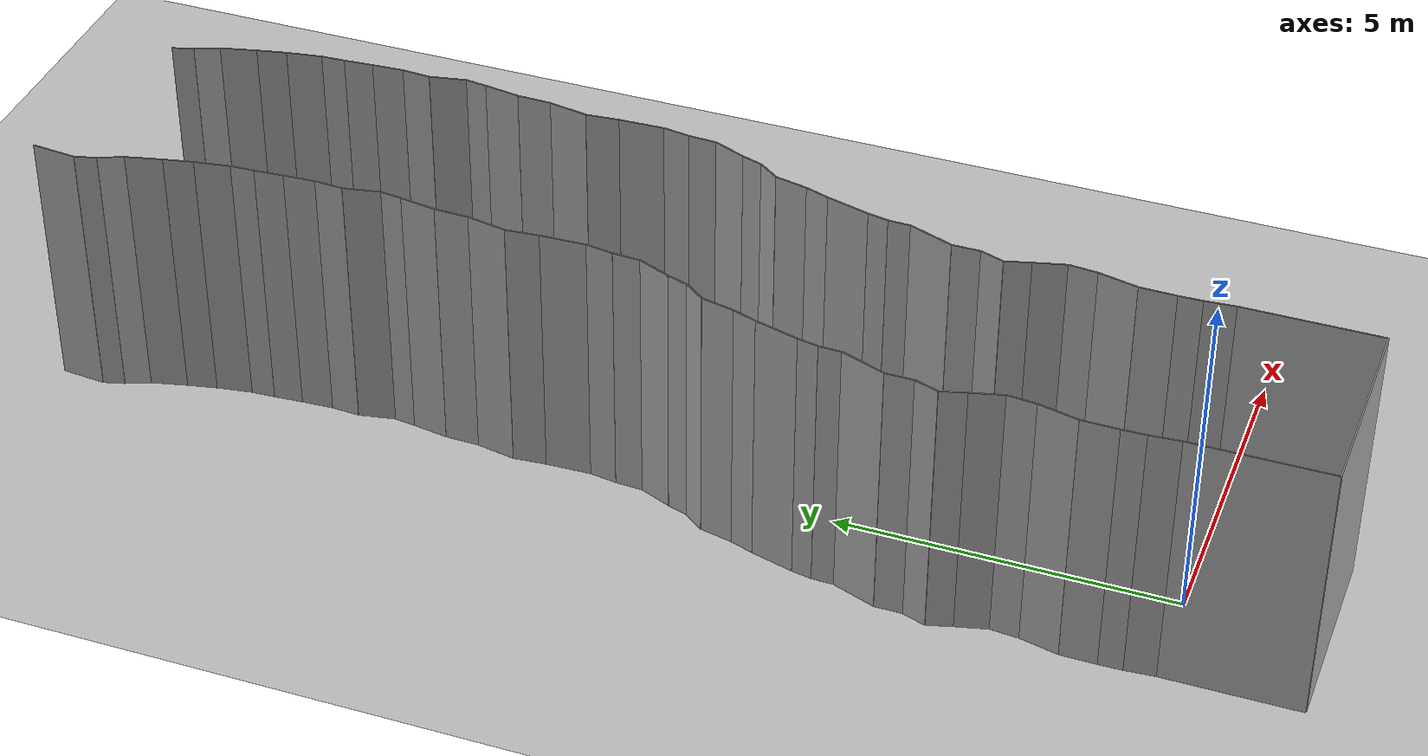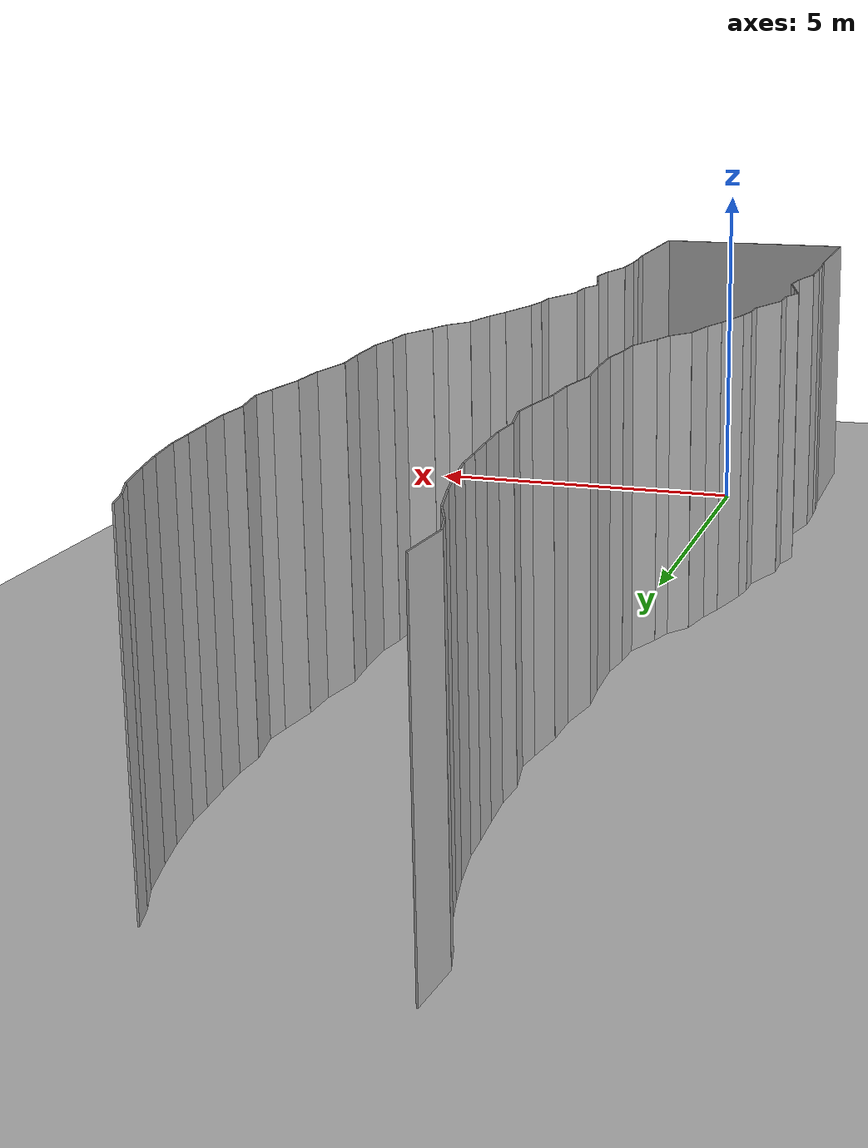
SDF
<sdf version="1.6">
 <world name="default">
  <model name="ground_plane">
   <static>1</static>
   <link name="link">
    <collision name="collision">
     <geometry><plane><normal>0 0 1</normal><size>200 200</size></plane></geometry>
     <surface><friction><ode><mu>100</mu><mu2>50</mu2></ode></friction></surface>
    </collision>
    <visual name="visual">
     <cast_shadows>0</cast_shadows>
     <geometry><plane><normal>0 0 1</normal><size>200 200</size></plane></geometry>
     <material>
      <script><uri>file://media/materials/scripts/gazebo.material</uri><name>Gazebo/Grey</name></script>
     </material>
    </visual>
   </link>
   <pose>0 100 0 0 -0 0</pose>
  </model>
  <model name="wall_back">
   <static>1</static>
   <pose>0.0 -2 2 0.0 0 0.0</pose>
   <link name="link">
    <collision name="collision"><geometry><box><size>3 0.02 4</size></box></geometry></collision>
    <visual name="visual">
     <material>
      <script><name>Gazebo/Grey</name><uri>file://media/materials/scripts/gazebo.material</uri></script>
     </material>
     <geometry><box><size>3 0.02 4</size></box></geometry>
    </visual>
   </link>
  </model>
  <model name="wall_left">
   <static>1</static>
   <pose>1.5 -1 2 0 0 0.00</pose>
   <link name="link">
    <collision name="collision"><geometry><box><size>0.02 2 4</size></box></geometry></collision>
    <visual name="visual">
     <material>
      <script><name>Gazebo/Grey</name><uri>file://media/materials/scripts/gazebo.material</uri></script>
     </material>
     <geometry><box><size>0.02 2 4</size></box></geometry>
    </visual>
   </link>
  </model>
  <model name="wall_right">
   <static>1</static>
   <pose>-1.5 -1 2 0 0 0.00</pose>
   <link name="link">
    <collision name="collision"><geometry><box><size>0.02 2 4</size></box></geometry></collision>
    <visual name="visual">
     <material>
      <script><name>Gazebo/Grey</name><uri>file://media/materials/scripts/gazebo.material</uri></script>
     </material>
     <geometry><box><size>0.02 2 4</size></box></geometry>
    </visual>
   </link>
  </model>
  <model name="wall_0">
   <static>1</static>
   <pose>-1.517400405700846 0.22270519185213933 2 0 0 0.07797360765698158</pose>
   <link name="link">
    <collision name="collision"><geometry><box><size>0.02 0.446767843948 4</size></box></geometry></collision>
    <visual name="visual">
     <material>
      <script><name>Gazebo/Grey</name><uri>file://media/materials/scripts/gazebo.material</uri></script>
     </material>
     <geometry><box><size>0.02 0.446767843948 4</size></box></geometry>
    </visual>
   </link>
  </model>
  <model name="wall_1">
   <static>1</static>
   <pose>1.482599594299154 0.22270519185213933 2 0 0 0.07797360765698158</pose>
   <link name="link">
    <collision name="collision"><geometry><box><size>0.02 0.446767843948 4</size></box></geometry></collision>
    <visual name="visual">
     <material>
      <script><name>Gazebo/Grey</name><uri>file://media/materials/scripts/gazebo.material</uri></script>
     </material>
     <geometry><box><size>0.02 0.446767843948 4</size></box></geometry>
    </visual>
   </link>
  </model>
  <model name="wall_2">
   <static>1</static>
   <pose>-1.538484740069656 0.6191674311720261 2 0 0 0.021198431287549818</pose>
   <link name="link">
    <collision name="collision"><geometry><box><size>0.02 0.347592191369 4</size></box></geometry></collision>
    <visual name="visual">
     <material>
      <script><name>Gazebo/Grey</name><uri>file://media/materials/scripts/gazebo.material</uri></script>
     </material>
     <geometry><box><size>0.02 0.347592191369 4</size></box></geometry>
    </visual>
   </link>
  </model>
  <model name="wall_3">
   <static>1</static>
   <pose>1.461515259930344 0.6191674311720261 2 0 0 0.021198431287549818</pose>
   <link name="link">
    <collision name="collision"><geometry><box><size>0.02 0.347592191369 4</size></box></geometry></collision>
    <visual name="visual">
     <material>
      <script><name>Gazebo/Grey</name><uri>file://media/materials/scripts/gazebo.material</uri></script>
     </material>
     <geometry><box><size>0.02 0.347592191369 4</size></box></geometry>
    </visual>
   </link>
  </model>
  <model name="wall_4">
   <static>1</static>
   <pose>-1.5382475325272809 1.0614027822165968 2 0 0 -0.014604001111507356</pose>
   <link name="link">
    <collision name="collision"><geometry><box><size>0.02 0.537013872449 4</size></box></geometry></collision>
    <visual name="visual">
     <material>
      <script><name>Gazebo/Grey</name><uri>file://media/materials/scripts/gazebo.material</uri></script>
     </material>
     <geometry><box><size>0.02 0.537013872449 4</size></box></geometry>
    </visual>
   </link>
  </model>
  <model name="wall_5">
   <static>1</static>
   <pose>1.4617524674727191 1.0614027822165968 2 0 0 -0.014604001111507356</pose>
   <link name="link">
    <collision name="collision"><geometry><box><size>0.02 0.537013872449 4</size></box></geometry></collision>
    <visual name="visual">
     <material>
      <script><name>Gazebo/Grey</name><uri>file://media/materials/scripts/gazebo.material</uri></script>
     </material>
     <geometry><box><size>0.02 0.537013872449 4</size></box></geometry>
    </visual>
   </link>
  </model>
  <model name="wall_6">
   <static>1</static>
   <pose>-1.4690011064224104 1.6202511780744204 2 0 0 -0.22128828142202453</pose>
   <link name="link">
    <collision name="collision"><geometry><box><size>0.02 0.595255185584 4</size></box></geometry></collision>
    <visual name="visual">
     <material>
      <script><name>Gazebo/Grey</name><uri>file://media/materials/scripts/gazebo.material</uri></script>
     </material>
     <geometry><box><size>0.02 0.595255185584 4</size></box></geometry>
    </visual>
   </link>
  </model>
  <model name="wall_7">
   <static>1</static>
   <pose>1.5309988935775896 1.6202511780744204 2 0 0 -0.22128828142202453</pose>
   <link name="link">
    <collision name="collision"><geometry><box><size>0.02 0.595255185584 4</size></box></geometry></collision>
    <visual name="visual">
     <material>
      <script><name>Gazebo/Grey</name><uri>file://media/materials/scripts/gazebo.material</uri></script>
     </material>
     <geometry><box><size>0.02 0.595255185584 4</size></box></geometry>
    </visual>
   </link>
  </model>
  <model name="wall_8">
   <static>1</static>
   <pose>-1.3854139207875884 2.1224906012741633 2 0 0 -0.0859816332729206</pose>
   <link name="link">
    <collision name="collision"><geometry><box><size>0.02 0.425309817521 4</size></box></geometry></collision>
    <visual name="visual">
     <material>
      <script><name>Gazebo/Grey</name><uri>file://media/materials/scripts/gazebo.material</uri></script>
     </material>
     <geometry><box><size>0.02 0.425309817521 4</size></box></geometry>
    </visual>
   </link>
  </model>
  <model name="wall_9">
   <static>1</static>
   <pose>1.6145860792124116 2.1224906012741633 2 0 0 -0.0859816332729206</pose>
   <link name="link">
    <collision name="collision"><geometry><box><size>0.02 0.425309817521 4</size></box></geometry></collision>
    <visual name="visual">
     <material>
      <script><name>Gazebo/Grey</name><uri>file://media/materials/scripts/gazebo.material</uri></script>
     </material>
     <geometry><box><size>0.02 0.425309817521 4</size></box></geometry>
    </visual>
   </link>
  </model>
  <model name="wall_10">
   <static>1</static>
   <pose>-1.4278485293488319 2.5689880970863985 2 0 0 0.25314279067731127</pose>
   <link name="link">
    <collision name="collision"><geometry><box><size>0.02 0.484703791591 4</size></box></geometry></collision>
    <visual name="visual">
     <material>
      <script><name>Gazebo/Grey</name><uri>file://media/materials/scripts/gazebo.material</uri></script>
     </material>
     <geometry><box><size>0.02 0.484703791591 4</size></box></geometry>
    </visual>
   </link>
  </model>
  <model name="wall_11">
   <static>1</static>
   <pose>1.5721514706511681 2.5689880970863985 2 0 0 0.25314279067731127</pose>
   <link name="link">
    <collision name="collision"><geometry><box><size>0.02 0.484703791591 4</size></box></geometry></collision>
    <visual name="visual">
     <material>
      <script><name>Gazebo/Grey</name><uri>file://media/materials/scripts/gazebo.material</uri></script>
     </material>
     <geometry><box><size>0.02 0.484703791591 4</size></box></geometry>
    </visual>
   </link>
  </model>
  <model name="wall_12">
   <static>1</static>
   <pose>-1.5404899620019925 2.9866335350339854 2 0 0 0.2765523475475418</pose>
   <link name="link">
    <collision name="collision"><geometry><box><size>0.02 0.380492301197 4</size></box></geometry></collision>
    <visual name="visual">
     <material>
      <script><name>Gazebo/Grey</name><uri>file://media/materials/scripts/gazebo.material</uri></script>
     </material>
     <geometry><box><size>0.02 0.380492301197 4</size></box></geometry>
    </visual>
   </link>
  </model>
  <model name="wall_13">
   <static>1</static>
   <pose>1.4595100379980075 2.9866335350339854 2 0 0 0.2765523475475418</pose>
   <link name="link">
    <collision name="collision"><geometry><box><size>0.02 0.380492301197 4</size></box></geometry></collision>
    <visual name="visual">
     <material>
      <script><name>Gazebo/Grey</name><uri>file://media/materials/scripts/gazebo.material</uri></script>
     </material>
     <geometry><box><size>0.02 0.380492301197 4</size></box></geometry>
    </visual>
   </link>
  </model>
  <model name="wall_14">
   <static>1</static>
   <pose>-1.5325124790575746 3.343703439421072 2 0 0 -0.3315677890882658</pose>
   <link name="link">
    <collision name="collision"><geometry><box><size>0.02 0.368157650196 4</size></box></geometry></collision>
    <visual name="visual">
     <material>
      <script><name>Gazebo/Grey</name><uri>file://media/materials/scripts/gazebo.material</uri></script>
     </material>
     <geometry><box><size>0.02 0.368157650196 4</size></box></geometry>
    </visual>
   </link>
  </model>
  <model name="wall_15">
   <static>1</static>
   <pose>1.4674875209424254 3.343703439421072 2 0 0 -0.3315677890882658</pose>
   <link name="link">
    <collision name="collision"><geometry><box><size>0.02 0.368157650196 4</size></box></geometry></collision>
    <visual name="visual">
     <material>
      <script><name>Gazebo/Grey</name><uri>file://media/materials/scripts/gazebo.material</uri></script>
     </material>
     <geometry><box><size>0.02 0.368157650196 4</size></box></geometry>
    </visual>
   </link>
  </model>
  <model name="wall_16">
   <static>1</static>
   <pose>-1.4721097631918243 3.724370834767425 2 0 0 -0.002324633996140721</pose>
   <link name="link">
    <collision name="collision"><geometry><box><size>0.02 0.41323064456 4</size></box></geometry></collision>
    <visual name="visual">
     <material>
      <script><name>Gazebo/Grey</name><uri>file://media/materials/scripts/gazebo.material</uri></script>
     </material>
     <geometry><box><size>0.02 0.41323064456 4</size></box></geometry>
    </visual>
   </link>
  </model>
  <model name="wall_17">
   <static>1</static>
   <pose>1.5278902368081757 3.724370834767425 2 0 0 -0.002324633996140721</pose>
   <link name="link">
    <collision name="collision"><geometry><box><size>0.02 0.41323064456 4</size></box></geometry></collision>
    <visual name="visual">
     <material>
      <script><name>Gazebo/Grey</name><uri>file://media/materials/scripts/gazebo.material</uri></script>
     </material>
     <geometry><box><size>0.02 0.41323064456 4</size></box></geometry>
    </visual>
   </link>
  </model>
  <model name="wall_18">
   <static>1</static>
   <pose>-1.3517692520525595 4.256364432140748 2 0 0 -0.35294653380588364</pose>
   <link name="link">
    <collision name="collision"><geometry><box><size>0.02 0.693506609392 4</size></box></geometry></collision>
    <visual name="visual">
     <material>
      <script><name>Gazebo/Grey</name><uri>file://media/materials/scripts/gazebo.material</uri></script>
     </material>
     <geometry><box><size>0.02 0.693506609392 4</size></box></geometry>
    </visual>
   </link>
  </model>
  <model name="wall_19">
   <static>1</static>
   <pose>1.6482307479474405 4.256364432140748 2 0 0 -0.35294653380588364</pose>
   <link name="link">
    <collision name="collision"><geometry><box><size>0.02 0.693506609392 4</size></box></geometry></collision>
    <visual name="visual">
     <material>
      <script><name>Gazebo/Grey</name><uri>file://media/materials/scripts/gazebo.material</uri></script>
     </material>
     <geometry><box><size>0.02 0.693506609392 4</size></box></geometry>
    </visual>
   </link>
  </model>
  <model name="wall_20">
   <static>1</static>
   <pose>-1.227636711686697 4.744123964637654 2 0 0 -0.026304532438163615</pose>
   <link name="link">
    <collision name="collision"><geometry><box><size>0.02 0.324873786497 4</size></box></geometry></collision>
    <visual name="visual">
     <material>
      <script><name>Gazebo/Grey</name><uri>file://media/materials/scripts/gazebo.material</uri></script>
     </material>
     <geometry><box><size>0.02 0.324873786497 4</size></box></geometry>
    </visual>
   </link>
  </model>
  <model name="wall_21">
   <static>1</static>
   <pose>1.772363288313303 4.744123964637654 2 0 0 -0.026304532438163615</pose>
   <link name="link">
    <collision name="collision"><geometry><box><size>0.02 0.324873786497 4</size></box></geometry></collision>
    <visual name="visual">
     <material>
      <script><name>Gazebo/Grey</name><uri>file://media/materials/scripts/gazebo.material</uri></script>
     </material>
     <geometry><box><size>0.02 0.324873786497 4</size></box></geometry>
    </visual>
   </link>
  </model>
  <model name="wall_22">
   <static>1</static>
   <pose>-1.194815430475022 5.056967520714394 2 0 0 -0.1875117950377441</pose>
   <link name="link">
    <collision name="collision"><geometry><box><size>0.02 0.306294718969 4</size></box></geometry></collision>
    <visual name="visual">
     <material>
      <script><name>Gazebo/Grey</name><uri>file://media/materials/scripts/gazebo.material</uri></script>
     </material>
     <geometry><box><size>0.02 0.306294718969 4</size></box></geometry>
    </visual>
   </link>
  </model>
  <model name="wall_23">
   <static>1</static>
   <pose>1.805184569524978 5.056967520714394 2 0 0 -0.1875117950377441</pose>
   <link name="link">
    <collision name="collision"><geometry><box><size>0.02 0.306294718969 4</size></box></geometry></collision>
    <visual name="visual">
     <material>
      <script><name>Gazebo/Grey</name><uri>file://media/materials/scripts/gazebo.material</uri></script>
     </material>
     <geometry><box><size>0.02 0.306294718969 4</size></box></geometry>
    </visual>
   </link>
  </model>
  <model name="wall_24">
   <static>1</static>
   <pose>-1.079417371918186 5.526751582192476 2 0 0 -0.26555675770987125</pose>
   <link name="link">
    <collision name="collision"><geometry><box><size>0.02 0.6618422766 4</size></box></geometry></collision>
    <visual name="visual">
     <material>
      <script><name>Gazebo/Grey</name><uri>file://media/materials/scripts/gazebo.material</uri></script>
     </material>
     <geometry><box><size>0.02 0.6618422766 4</size></box></geometry>
    </visual>
   </link>
  </model>
  <model name="wall_25">
   <static>1</static>
   <pose>1.920582628081814 5.526751582192476 2 0 0 -0.26555675770987125</pose>
   <link name="link">
    <collision name="collision"><geometry><box><size>0.02 0.6618422766 4</size></box></geometry></collision>
    <visual name="visual">
     <material>
      <script><name>Gazebo/Grey</name><uri>file://media/materials/scripts/gazebo.material</uri></script>
     </material>
     <geometry><box><size>0.02 0.6618422766 4</size></box></geometry>
    </visual>
   </link>
  </model>
  <model name="wall_26">
   <static>1</static>
   <pose>-0.9331630423043914 6.019489471910388 2 0 0 -0.33002937253807935</pose>
   <link name="link">
    <collision name="collision"><geometry><box><size>0.02 0.366618748459 4</size></box></geometry></collision>
    <visual name="visual">
     <material>
      <script><name>Gazebo/Grey</name><uri>file://media/materials/scripts/gazebo.material</uri></script>
     </material>
     <geometry><box><size>0.02 0.366618748459 4</size></box></geometry>
    </visual>
   </link>
  </model>
  <model name="wall_27">
   <static>1</static>
   <pose>2.0668369576956085 6.019489471910388 2 0 0 -0.33002937253807935</pose>
   <link name="link">
    <collision name="collision"><geometry><box><size>0.02 0.366618748459 4</size></box></geometry></collision>
    <visual name="visual">
     <material>
      <script><name>Gazebo/Grey</name><uri>file://media/materials/scripts/gazebo.material</uri></script>
     </material>
     <geometry><box><size>0.02 0.366618748459 4</size></box></geometry>
    </visual>
   </link>
  </model>
  <model name="wall_28">
   <static>1</static>
   <pose>-0.8216548867542122 6.434227950047219 2 0 0 -0.21264242066373062</pose>
   <link name="link">
    <collision name="collision"><geometry><box><size>0.02 0.493764817735 4</size></box></geometry></collision>
    <visual name="visual">
     <material>
      <script><name>Gazebo/Grey</name><uri>file://media/materials/scripts/gazebo.material</uri></script>
     </material>
     <geometry><box><size>0.02 0.493764817735 4</size></box></geometry>
    </visual>
   </link>
  </model>
  <model name="wall_29">
   <static>1</static>
   <pose>2.178345113245788 6.434227950047219 2 0 0 -0.21264242066373062</pose>
   <link name="link">
    <collision name="collision"><geometry><box><size>0.02 0.493764817735 4</size></box></geometry></collision>
    <visual name="visual">
     <material>
      <script><name>Gazebo/Grey</name><uri>file://media/materials/scripts/gazebo.material</uri></script>
     </material>
     <geometry><box><size>0.02 0.493764817735 4</size></box></geometry>
    </visual>
   </link>
  </model>
  <model name="wall_30">
   <static>1</static>
   <pose>-0.6594195212636004 6.822402548026057 2 0 0 -0.6434698371133363</pose>
   <link name="link">
    <collision name="collision"><geometry><box><size>0.02 0.367123402309 4</size></box></geometry></collision>
    <visual name="visual">
     <material>
      <script><name>Gazebo/Grey</name><uri>file://media/materials/scripts/gazebo.material</uri></script>
     </material>
     <geometry><box><size>0.02 0.367123402309 4</size></box></geometry>
    </visual>
   </link>
  </model>
  <model name="wall_31">
   <static>1</static>
   <pose>2.3405804787363995 6.822402548026057 2 0 0 -0.6434698371133363</pose>
   <link name="link">
    <collision name="collision"><geometry><box><size>0.02 0.367123402309 4</size></box></geometry></collision>
    <visual name="visual">
     <material>
      <script><name>Gazebo/Grey</name><uri>file://media/materials/scripts/gazebo.material</uri></script>
     </material>
     <geometry><box><size>0.02 0.367123402309 4</size></box></geometry>
    </visual>
   </link>
  </model>
  <model name="wall_32">
   <static>1</static>
   <pose>-0.5002769118110462 7.120379788905422 2 0 0 -0.3136017950999182</pose>
   <link name="link">
    <collision name="collision"><geometry><box><size>0.02 0.317745766039 4</size></box></geometry></collision>
    <visual name="visual">
     <material>
      <script><name>Gazebo/Grey</name><uri>file://media/materials/scripts/gazebo.material</uri></script>
     </material>
     <geometry><box><size>0.02 0.317745766039 4</size></box></geometry>
    </visual>
   </link>
  </model>
  <model name="wall_33">
   <static>1</static>
   <pose>2.499723088188954 7.120379788905422 2 0 0 -0.3136017950999182</pose>
   <link name="link">
    <collision name="collision"><geometry><box><size>0.02 0.317745766039 4</size></box></geometry></collision>
    <visual name="visual">
     <material>
      <script><name>Gazebo/Grey</name><uri>file://media/materials/scripts/gazebo.material</uri></script>
     </material>
     <geometry><box><size>0.02 0.317745766039 4</size></box></geometry>
    </visual>
   </link>
  </model>
  <model name="wall_34">
   <static>1</static>
   <pose>-0.3526167482036617 7.508015287731277 2 0 0 -0.39516468108146524</pose>
   <link name="link">
    <collision name="collision"><geometry><box><size>0.02 0.512520446292 4</size></box></geometry></collision>
    <visual name="visual">
     <material>
      <script><name>Gazebo/Grey</name><uri>file://media/materials/scripts/gazebo.material</uri></script>
     </material>
     <geometry><box><size>0.02 0.512520446292 4</size></box></geometry>
    </visual>
   </link>
  </model>
  <model name="wall_35">
   <static>1</static>
   <pose>2.6473832517963385 7.508015287731277 2 0 0 -0.39516468108146524</pose>
   <link name="link">
    <collision name="collision"><geometry><box><size>0.02 0.512520446292 4</size></box></geometry></collision>
    <visual name="visual">
     <material>
      <script><name>Gazebo/Grey</name><uri>file://media/materials/scripts/gazebo.material</uri></script>
     </material>
     <geometry><box><size>0.02 0.512520446292 4</size></box></geometry>
    </visual>
   </link>
  </model>
  <model name="wall_36">
   <static>1</static>
   <pose>-0.24348783561851456 7.948004685225667 2 0 0 -0.05145354108220038</pose>
   <link name="link">
    <collision name="collision"><geometry><box><size>0.02 0.407495966095 4</size></box></geometry></collision>
    <visual name="visual">
     <material>
      <script><name>Gazebo/Grey</name><uri>file://media/materials/scripts/gazebo.material</uri></script>
     </material>
     <geometry><box><size>0.02 0.407495966095 4</size></box></geometry>
    </visual>
   </link>
  </model>
  <model name="wall_37">
   <static>1</static>
   <pose>2.7565121643814856 7.948004685225667 2 0 0 -0.05145354108220038</pose>
   <link name="link">
    <collision name="collision"><geometry><box><size>0.02 0.407495966095 4</size></box></geometry></collision>
    <visual name="visual">
     <material>
      <script><name>Gazebo/Grey</name><uri>file://media/materials/scripts/gazebo.material</uri></script>
     </material>
     <geometry><box><size>0.02 0.407495966095 4</size></box></geometry>
    </visual>
   </link>
  </model>
  <model name="wall_38">
   <static>1</static>
   <pose>-0.20231427958396506 8.353806132833219 2 0 0 -0.15056279947688372</pose>
   <link name="link">
    <collision name="collision"><geometry><box><size>0.02 0.409276445221 4</size></box></geometry></collision>
    <visual name="visual">
     <material>
      <script><name>Gazebo/Grey</name><uri>file://media/materials/scripts/gazebo.material</uri></script>
     </material>
     <geometry><box><size>0.02 0.409276445221 4</size></box></geometry>
    </visual>
   </link>
  </model>
  <model name="wall_39">
   <static>1</static>
   <pose>2.797685720416035 8.353806132833219 2 0 0 -0.15056279947688372</pose>
   <link name="link">
    <collision name="collision"><geometry><box><size>0.02 0.409276445221 4</size></box></geometry></collision>
    <visual name="visual">
     <material>
      <script><name>Gazebo/Grey</name><uri>file://media/materials/scripts/gazebo.material</uri></script>
     </material>
     <geometry><box><size>0.02 0.409276445221 4</size></box></geometry>
    </visual>
   </link>
  </model>
  <model name="wall_40">
   <static>1</static>
   <pose>-0.18269914202459525 8.892090272240686 2 0 0 0.03296654550663393</pose>
   <link name="link">
    <collision name="collision"><geometry><box><size>0.02 0.672287338196 4</size></box></geometry></collision>
    <visual name="visual">
     <material>
      <script><name>Gazebo/Grey</name><uri>file://media/materials/scripts/gazebo.material</uri></script>
     </material>
     <geometry><box><size>0.02 0.672287338196 4</size></box></geometry>
    </visual>
   </link>
  </model>
  <model name="wall_41">
   <static>1</static>
   <pose>2.817300857975405 8.892090272240686 2 0 0 0.03296654550663393</pose>
   <link name="link">
    <collision name="collision"><geometry><box><size>0.02 0.672287338196 4</size></box></geometry></collision>
    <visual name="visual">
     <material>
      <script><name>Gazebo/Grey</name><uri>file://media/materials/scripts/gazebo.material</uri></script>
     </material>
     <geometry><box><size>0.02 0.672287338196 4</size></box></geometry>
    </visual>
   </link>
  </model>
  <model name="wall_42">
   <static>1</static>
   <pose>-0.21465609067422717 9.474038734755839 2 0 0 0.0846691498733114</pose>
   <link name="link">
    <collision name="collision"><geometry><box><size>0.02 0.493743605961 4</size></box></geometry></collision>
    <visual name="visual">
     <material>
      <script><name>Gazebo/Grey</name><uri>file://media/materials/scripts/gazebo.material</uri></script>
     </material>
     <geometry><box><size>0.02 0.493743605961 4</size></box></geometry>
    </visual>
   </link>
  </model>
  <model name="wall_43">
   <static>1</static>
   <pose>2.785343909325773 9.474038734755839 2 0 0 0.0846691498733114</pose>
   <link name="link">
    <collision name="collision"><geometry><box><size>0.02 0.493743605961 4</size></box></geometry></collision>
    <visual name="visual">
     <material>
      <script><name>Gazebo/Grey</name><uri>file://media/materials/scripts/gazebo.material</uri></script>
     </material>
     <geometry><box><size>0.02 0.493743605961 4</size></box></geometry>
    </visual>
   </link>
  </model>
  <model name="wall_44">
   <static>1</static>
   <pose>-0.1829470090662563 10.011152340408753 2 0 0 -0.17870450283797976</pose>
   <link name="link">
    <collision name="collision"><geometry><box><size>0.02 0.591674880066 4</size></box></geometry></collision>
    <visual name="visual">
     <material>
      <script><name>Gazebo/Grey</name><uri>file://media/materials/scripts/gazebo.material</uri></script>
     </material>
     <geometry><box><size>0.02 0.591674880066 4</size></box></geometry>
    </visual>
   </link>
  </model>
  <model name="wall_45">
   <static>1</static>
   <pose>2.817052990933744 10.011152340408753 2 0 0 -0.17870450283797976</pose>
   <link name="link">
    <collision name="collision"><geometry><box><size>0.02 0.591674880066 4</size></box></geometry></collision>
    <visual name="visual">
     <material>
      <script><name>Gazebo/Grey</name><uri>file://media/materials/scripts/gazebo.material</uri></script>
     </material>
     <geometry><box><size>0.02 0.591674880066 4</size></box></geometry>
    </visual>
   </link>
  </model>
  <model name="wall_46">
   <static>1</static>
   <pose>-0.12374734299135838 10.556126179677776 2 0 0 -0.026045654928100116</pose>
   <link name="link">
    <collision name="collision"><geometry><box><size>0.02 0.507867592501 4</size></box></geometry></collision>
    <visual name="visual">
     <material>
      <script><name>Gazebo/Grey</name><uri>file://media/materials/scripts/gazebo.material</uri></script>
     </material>
     <geometry><box><size>0.02 0.507867592501 4</size></box></geometry>
    </visual>
   </link>
  </model>
  <model name="wall_47">
   <static>1</static>
   <pose>2.8762526570086417 10.556126179677776 2 0 0 -0.026045654928100116</pose>
   <link name="link">
    <collision name="collision"><geometry><box><size>0.02 0.507867592501 4</size></box></geometry></collision>
    <visual name="visual">
     <material>
      <script><name>Gazebo/Grey</name><uri>file://media/materials/scripts/gazebo.material</uri></script>
     </material>
     <geometry><box><size>0.02 0.507867592501 4</size></box></geometry>
    </visual>
   </link>
  </model>
  <model name="wall_48">
   <static>1</static>
   <pose>-0.07644699972790331 11.076148313374654 2 0 0 -0.15168506396018802</pose>
   <link name="link">
    <collision name="collision"><geometry><box><size>0.02 0.53853243177 4</size></box></geometry></collision>
    <visual name="visual">
     <material>
      <script><name>Gazebo/Grey</name><uri>file://media/materials/scripts/gazebo.material</uri></script>
     </material>
     <geometry><box><size>0.02 0.53853243177 4</size></box></geometry>
    </visual>
   </link>
  </model>
  <model name="wall_49">
   <static>1</static>
   <pose>2.9235530002720966 11.076148313374654 2 0 0 -0.15168506396018802</pose>
   <link name="link">
    <collision name="collision"><geometry><box><size>0.02 0.53853243177 4</size></box></geometry></collision>
    <visual name="visual">
     <material>
      <script><name>Gazebo/Grey</name><uri>file://media/materials/scripts/gazebo.material</uri></script>
     </material>
     <geometry><box><size>0.02 0.53853243177 4</size></box></geometry>
    </visual>
   </link>
  </model>
  <model name="wall_50">
   <static>1</static>
   <pose>-0.01497469235773137 11.502896802387374 2 0 0 -0.12872663914691143</pose>
   <link name="link">
    <collision name="collision"><geometry><box><size>0.02 0.323827345618 4</size></box></geometry></collision>
    <visual name="visual">
     <material>
      <script><name>Gazebo/Grey</name><uri>file://media/materials/scripts/gazebo.material</uri></script>
     </material>
     <geometry><box><size>0.02 0.323827345618 4</size></box></geometry>
    </visual>
   </link>
  </model>
  <model name="wall_51">
   <static>1</static>
   <pose>2.985025307642269 11.502896802387374 2 0 0 -0.12872663914691143</pose>
   <link name="link">
    <collision name="collision"><geometry><box><size>0.02 0.323827345618 4</size></box></geometry></collision>
    <visual name="visual">
     <material>
      <script><name>Gazebo/Grey</name><uri>file://media/materials/scripts/gazebo.material</uri></script>
     </material>
     <geometry><box><size>0.02 0.323827345618 4</size></box></geometry>
    </visual>
   </link>
  </model>
  <model name="wall_52">
   <static>1</static>
   <pose>-0.04615767591568272 11.933152148315687 2 0 0 0.19036829829793145</pose>
   <link name="link">
    <collision name="collision"><geometry><box><size>0.02 0.549285700864 4</size></box></geometry></collision>
    <visual name="visual">
     <material>
      <script><name>Gazebo/Grey</name><uri>file://media/materials/scripts/gazebo.material</uri></script>
     </material>
     <geometry><box><size>0.02 0.549285700864 4</size></box></geometry>
    </visual>
   </link>
  </model>
  <model name="wall_53">
   <static>1</static>
   <pose>2.9538423240843175 11.933152148315687 2 0 0 0.19036829829793145</pose>
   <link name="link">
    <collision name="collision"><geometry><box><size>0.02 0.549285700864 4</size></box></geometry></collision>
    <visual name="visual">
     <material>
      <script><name>Gazebo/Grey</name><uri>file://media/materials/scripts/gazebo.material</uri></script>
     </material>
     <geometry><box><size>0.02 0.549285700864 4</size></box></geometry>
    </visual>
   </link>
  </model>
  <model name="wall_54">
   <static>1</static>
   <pose>-0.08553015207405498 12.414556490212302 2 0 0 -0.059420878645683</pose>
   <link name="link">
    <collision name="collision"><geometry><box><size>0.02 0.424194703844 4</size></box></geometry></collision>
    <visual name="visual">
     <material>
      <script><name>Gazebo/Grey</name><uri>file://media/materials/scripts/gazebo.material</uri></script>
     </material>
     <geometry><box><size>0.02 0.424194703844 4</size></box></geometry>
    </visual>
   </link>
  </model>
  <model name="wall_55">
   <static>1</static>
   <pose>2.914469847925945 12.414556490212302 2 0 0 -0.059420878645683</pose>
   <link name="link">
    <collision name="collision"><geometry><box><size>0.02 0.424194703844 4</size></box></geometry></collision>
    <visual name="visual">
     <material>
      <script><name>Gazebo/Grey</name><uri>file://media/materials/scripts/gazebo.material</uri></script>
     </material>
     <geometry><box><size>0.02 0.424194703844 4</size></box></geometry>
    </visual>
   </link>
  </model>
  <model name="wall_56">
   <static>1</static>
   <pose>-0.08622264358435099 12.861903929554948 2 0 0 0.05633553169933642</pose>
   <link name="link">
    <collision name="collision"><geometry><box><size>0.02 0.471997626016 4</size></box></geometry></collision>
    <visual name="visual">
     <material>
      <script><name>Gazebo/Grey</name><uri>file://media/materials/scripts/gazebo.material</uri></script>
     </material>
     <geometry><box><size>0.02 0.471997626016 4</size></box></geometry>
    </visual>
   </link>
  </model>
  <model name="wall_57">
   <static>1</static>
   <pose>2.913777356415649 12.861903929554948 2 0 0 0.05633553169933642</pose>
   <link name="link">
    <collision name="collision"><geometry><box><size>0.02 0.471997626016 4</size></box></geometry></collision>
    <visual name="visual">
     <material>
      <script><name>Gazebo/Grey</name><uri>file://media/materials/scripts/gazebo.material</uri></script>
     </material>
     <geometry><box><size>0.02 0.471997626016 4</size></box></geometry>
    </visual>
   </link>
  </model>
  <model name="wall_58">
   <static>1</static>
   <pose>-0.1146179216074153 13.314674111700484 2 0 0 0.06945973517018125</pose>
   <link name="link">
    <collision name="collision"><geometry><box><size>0.02 0.435341291348 4</size></box></geometry></collision>
    <visual name="visual">
     <material>
      <script><name>Gazebo/Grey</name><uri>file://media/materials/scripts/gazebo.material</uri></script>
     </material>
     <geometry><box><size>0.02 0.435341291348 4</size></box></geometry>
    </visual>
   </link>
  </model>
  <model name="wall_59">
   <static>1</static>
   <pose>2.8853820783925848 13.314674111700484 2 0 0 0.06945973517018125</pose>
   <link name="link">
    <collision name="collision"><geometry><box><size>0.02 0.435341291348 4</size></box></geometry></collision>
    <visual name="visual">
     <material>
      <script><name>Gazebo/Grey</name><uri>file://media/materials/scripts/gazebo.material</uri></script>
     </material>
     <geometry><box><size>0.02 0.435341291348 4</size></box></geometry>
    </visual>
   </link>
  </model>
  <model name="wall_60">
   <static>1</static>
   <pose>-0.13839154024767428 13.708374575658198 2 0 0 0.049046994777524645</pose>
   <link name="link">
    <collision name="collision"><geometry><box><size>0.02 0.353534547607 4</size></box></geometry></collision>
    <visual name="visual">
     <material>
      <script><name>Gazebo/Grey</name><uri>file://media/materials/scripts/gazebo.material</uri></script>
     </material>
     <geometry><box><size>0.02 0.353534547607 4</size></box></geometry>
    </visual>
   </link>
  </model>
  <model name="wall_61">
   <static>1</static>
   <pose>2.861608459752326 13.708374575658198 2 0 0 0.049046994777524645</pose>
   <link name="link">
    <collision name="collision"><geometry><box><size>0.02 0.353534547607 4</size></box></geometry></collision>
    <visual name="visual">
     <material>
      <script><name>Gazebo/Grey</name><uri>file://media/materials/scripts/gazebo.material</uri></script>
     </material>
     <geometry><box><size>0.02 0.353534547607 4</size></box></geometry>
    </visual>
   </link>
  </model>
  <model name="wall_62">
   <static>1</static>
   <pose>-0.18932486366315185 14.148777225991369 2 0 0 0.15884455060752128</pose>
   <link name="link">
    <collision name="collision"><geometry><box><size>0.02 0.534423919061 4</size></box></geometry></collision>
    <visual name="visual">
     <material>
      <script><name>Gazebo/Grey</name><uri>file://media/materials/scripts/gazebo.material</uri></script>
     </material>
     <geometry><box><size>0.02 0.534423919061 4</size></box></geometry>
    </visual>
   </link>
  </model>
  <model name="wall_63">
   <static>1</static>
   <pose>2.8106751363368483 14.148777225991369 2 0 0 0.15884455060752128</pose>
   <link name="link">
    <collision name="collision"><geometry><box><size>0.02 0.534423919061 4</size></box></geometry></collision>
    <visual name="visual">
     <material>
      <script><name>Gazebo/Grey</name><uri>file://media/materials/scripts/gazebo.material</uri></script>
     </material>
     <geometry><box><size>0.02 0.534423919061 4</size></box></geometry>
    </visual>
   </link>
  </model>
  <model name="wall_64">
   <static>1</static>
   <pose>-0.2785587440005248 14.629385538147812 2 0 0 0.2133785116715421</pose>
   <link name="link">
    <collision name="collision"><geometry><box><size>0.02 0.443580667524 4</size></box></geometry></collision>
    <visual name="visual">
     <material>
      <script><name>Gazebo/Grey</name><uri>file://media/materials/scripts/gazebo.material</uri></script>
     </material>
     <geometry><box><size>0.02 0.443580667524 4</size></box></geometry>
    </visual>
   </link>
  </model>
  <model name="wall_65">
   <static>1</static>
   <pose>2.7214412559994754 14.629385538147812 2 0 0 0.2133785116715421</pose>
   <link name="link">
    <collision name="collision"><geometry><box><size>0.02 0.443580667524 4</size></box></geometry></collision>
    <visual name="visual">
     <material>
      <script><name>Gazebo/Grey</name><uri>file://media/materials/scripts/gazebo.material</uri></script>
     </material>
     <geometry><box><size>0.02 0.443580667524 4</size></box></geometry>
    </visual>
   </link>
  </model>
  <model name="wall_66">
   <static>1</static>
   <pose>-0.390800484489883 15.110812577996494 2 0 0 0.2418044379152058</pose>
   <link name="link">
    <collision name="collision"><geometry><box><size>0.02 0.545194439255 4</size></box></geometry></collision>
    <visual name="visual">
     <material>
      <script><name>Gazebo/Grey</name><uri>file://media/materials/scripts/gazebo.material</uri></script>
     </material>
     <geometry><box><size>0.02 0.545194439255 4</size></box></geometry>
    </visual>
   </link>
  </model>
  <model name="wall_67">
   <static>1</static>
   <pose>2.609199515510117 15.110812577996494 2 0 0 0.2418044379152058</pose>
   <link name="link">
    <collision name="collision"><geometry><box><size>0.02 0.545194439255 4</size></box></geometry></collision>
    <visual name="visual">
     <material>
      <script><name>Gazebo/Grey</name><uri>file://media/materials/scripts/gazebo.material</uri></script>
     </material>
     <geometry><box><size>0.02 0.545194439255 4</size></box></geometry>
    </visual>
   </link>
  </model>
  <model name="wall_68">
   <static>1</static>
   <pose>-0.5311126606760186 15.551350264213484 2 0 0 0.40327726630793564</pose>
   <link name="link">
    <collision name="collision"><geometry><box><size>0.02 0.382419800872 4</size></box></geometry></collision>
    <visual name="visual">
     <material>
      <script><name>Gazebo/Grey</name><uri>file://media/materials/scripts/gazebo.material</uri></script>
     </material>
     <geometry><box><size>0.02 0.382419800872 4</size></box></geometry>
    </visual>
   </link>
  </model>
  <model name="wall_69">
   <static>1</static>
   <pose>2.4688873393239814 15.551350264213484 2 0 0 0.40327726630793564</pose>
   <link name="link">
    <collision name="collision"><geometry><box><size>0.02 0.382419800872 4</size></box></geometry></collision>
    <visual name="visual">
     <material>
      <script><name>Gazebo/Grey</name><uri>file://media/materials/scripts/gazebo.material</uri></script>
     </material>
     <geometry><box><size>0.02 0.382419800872 4</size></box></geometry>
    </visual>
   </link>
  </model>
  <model name="wall_70">
   <static>1</static>
   <pose>-0.650011105229502 15.883077553922028 2 0 0 0.27432468117290343</pose>
   <link name="link">
    <collision name="collision"><geometry><box><size>0.02 0.323820752247 4</size></box></geometry></collision>
    <visual name="visual">
     <material>
      <script><name>Gazebo/Grey</name><uri>file://media/materials/scripts/gazebo.material</uri></script>
     </material>
     <geometry><box><size>0.02 0.323820752247 4</size></box></geometry>
    </visual>
   </link>
  </model>
  <model name="wall_71">
   <static>1</static>
   <pose>2.349988894770498 15.883077553922028 2 0 0 0.27432468117290343</pose>
   <link name="link">
    <collision name="collision"><geometry><box><size>0.02 0.323820752247 4</size></box></geometry></collision>
    <visual name="visual">
     <material>
      <script><name>Gazebo/Grey</name><uri>file://media/materials/scripts/gazebo.material</uri></script>
     </material>
     <geometry><box><size>0.02 0.323820752247 4</size></box></geometry>
    </visual>
   </link>
  </model>
  <model name="wall_72">
   <static>1</static>
   <pose>-0.6640294373326504 16.37140859971622 2 0 0 -0.089519372657797</pose>
   <link name="link">
    <collision name="collision"><geometry><box><size>0.02 0.667622813229 4</size></box></geometry></collision>
    <visual name="visual">
     <material>
      <script><name>Gazebo/Grey</name><uri>file://media/materials/scripts/gazebo.material</uri></script>
     </material>
     <geometry><box><size>0.02 0.667622813229 4</size></box></geometry>
    </visual>
   </link>
  </model>
 </world>
</sdf>
